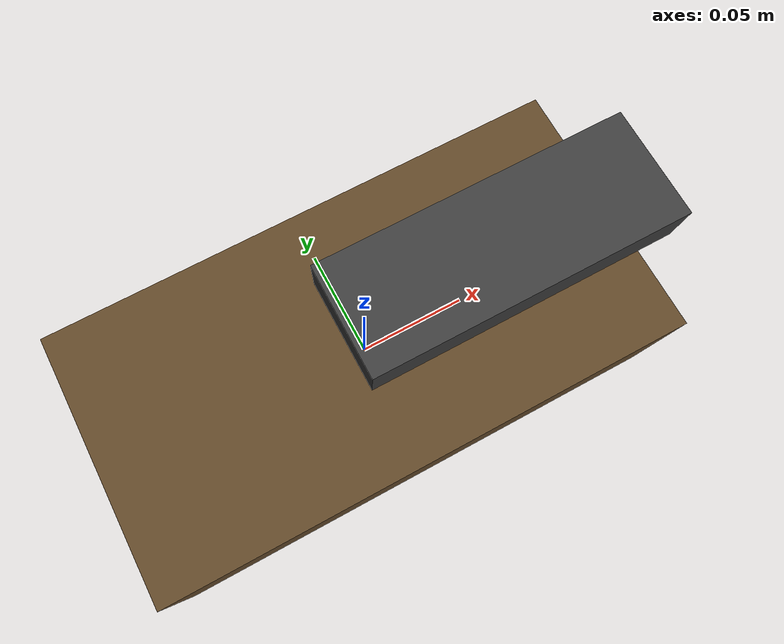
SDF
<?xml version="1.0" ?>
<sdf version="1.9">
  <model name="morse_key">
    <static>true</static>
    <link name="link">
      <collision name="base_collision">
        <geometry>
          <box>
            <size>0.24 0.12 0.06</size>
          </box>
        </geometry>
      </collision>
      <visual name="base_visual">
        <geometry>
          <box>
            <size>0.24 0.12 0.06</size>
          </box>
        </geometry>
        <material>
          <ambient>0.3 0.22 0.12 1</ambient>
          <diffuse>0.38 0.28 0.16 1</diffuse>
        </material>
      </visual>

      <collision name="key_collision">
        <pose>0.06 0 0.05 0 0 0</pose>
        <geometry>
          <box>
            <size>0.14 0.05 0.02</size>
          </box>
        </geometry>
      </collision>
      <visual name="key_visual">
        <pose>0.06 0 0.05 0 0 0</pose>
        <geometry>
          <box>
            <size>0.14 0.05 0.02</size>
          </box>
        </geometry>
        <material>
          <ambient>0.18 0.18 0.18 1</ambient>
          <diffuse>0.24 0.24 0.24 1</diffuse>
        </material>
      </visual>

      <sensor name="morse_key_contact" type="contact">
        <contact>
          <collision>key_collision</collision>
        </contact>
        <always_on>true</always_on>
        <update_rate>30</update_rate>
      </sensor>
    </link>
    <plugin filename="ignition-gazebo-contact-system" name="gz::sim::systems::Contact"/>
  </model>
</sdf>
